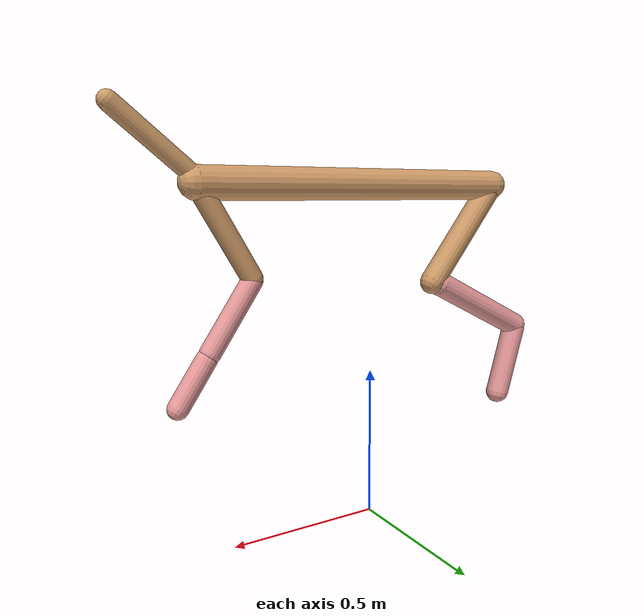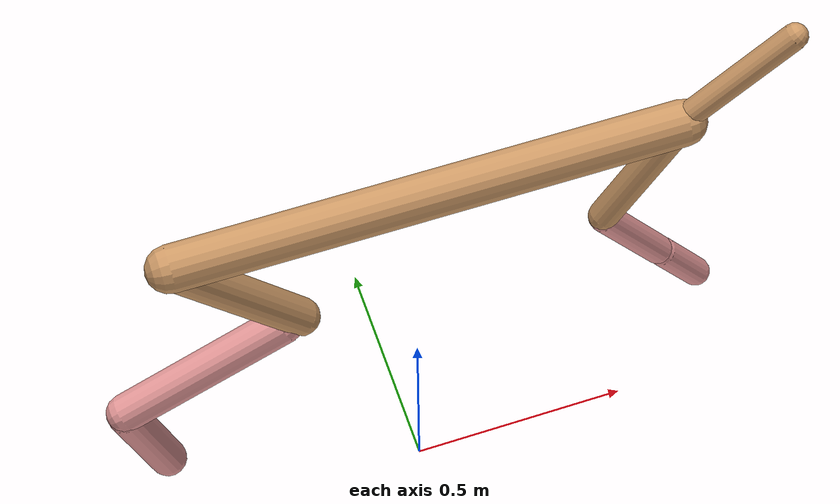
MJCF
<mujoco model="cheetah">
  <compiler angle="radian" coordinate="local" inertiafromgeom="true" settotalmass="14" />
  <default>
    <joint armature=".1" damping=".01" limited="true" solimplimit="0 .8 .03" solreflimit=".02 1" stiffness="8" />
    <geom conaffinity="0" condim="3" contype="1" friction="0.8 .1 .1" rgba="0.8 0.6 .4 1" solimp="0.0 0.8 0.01" solref="0.02 1" />
    <motor ctrllimited="true" ctrlrange="-1 1" />
  </default>
  <size nstack="300000" nuser_geom="1" />
  <option gravity="0 0 -9.81" timestep="0.01" />
  <worldbody>
    <body name="torso" pos="0.0 0.0 1.1024002402807178">
      <joint armature="0" axis="1 0 0" damping="0" limited="false" name="ignorex" pos="0 0 0" stiffness="0" type="slide" />
      <joint armature="0" axis="0 0 1" damping="0" limited="false" name="ignorez" pos="0 0 0" stiffness="0" type="slide" />
      <joint armature="0" axis="0 1 0" damping="0" limited="false" name="ignorey" pos="0 0 0" stiffness="0" type="hinge" />
      <geom fromto="-0.5 0.0 0.0 0.5676986416207447 0.0 0.0" name="torso" size="0.048550489786992466" type="capsule" />
      <geom axisangle="0 1 0 .87" name="head" pos="0.6676986416207445 0.0 0.1" size="0.027370455421267013 0.15" type="capsule" />

      <body name="bthigh" pos="-.5 0 0">
        <joint axis="0 1 0" damping="6" name="bthigh" pos="0 0 0" range="-.52 1.05" stiffness="240" type="hinge" />
        <geom axisangle="0 1 0 -3.8" name="bthigh" pos="0.13014866501424582 0.0 -0.16919326451851957" size="0.041226684514983965 0.19444748715313906" type="capsule" />
        <body name="bshin" pos="0.22029733002849164 0.0 -0.32838652903703913">
          <joint axis="0 1 0" damping="4.5" name="bshin" pos="0 0 0" range="-.785 .785" stiffness="180" type="hinge" />
          <geom axisangle="0 1 0 -2.03" name="bshin" pos="-0.18575225210660684 0.0 -0.09287612605330342" rgba="0.9 0.6 0.6 1" size="0.041226684514983965 0.20115257291704042" type="capsule" />
          <body name="bfoot" pos="-0.3715045042132137 0.0 -0.18575225210660684">
            <joint axis="0 1 0" damping="3" name="bfoot" pos="0 0 0" range="-.4 .785" stiffness="120" type="hinge" />
            <geom axisangle="0 1 0 -.27" name="bfoot" pos="0.03947146290250391 0.0 -0.12762439671809597" rgba="0.9 0.6 0.6 1" size="0.041226684514983965 0.12605561236134533" type="capsule" />
            <inertial mass="10" />
          </body>
        </body>
      </body>
      <body name="fthigh" pos="0.5676986416207446 0.0 0.0">
        <joint axis="0 1 0" damping="4.5" name="fthigh" pos="0 0 0" range="-1.5 0.8" stiffness="180" type="hinge" />
        <geom axisangle="0 1 0 .52" name="fthigh" pos="-0.08007545568813362 0.0 -0.1372722097510862" size="0.0322 0.1529961005450828" type="capsule" />
        <body name="fshin" pos="-0.16015091137626725 0.0 -0.2745444195021724">
          <joint axis="0 1 0" damping="3" name="fshin" pos="0 0 0" range="-1.2 1.1" stiffness="120" type="hinge" />
          <geom axisangle="0 1 0 -.6" name="fshin" pos="0.07433081177581963 0.0 -0.10291958553575024" rgba="0.9 0.6 0.6 1" size="0.0322 0.12193674178781036" type="capsule" />
          <body name="ffoot" pos="0.14866162355163925 0.0 -0.2058391710715005">
            <joint axis="0 1 0" damping="1.5" name="ffoot" pos="0 0 0" range="-3.1 -0.3" stiffness="60" type="hinge" />
            <geom axisangle="0 1 0 -.6" name="ffoot" pos="0.05069107535074817 0.0 -0.07885278387894161" rgba="0.9 0.6 0.6 1" size="0.0322 0.08052426344478043" type="capsule" />
            <inertial mass="10" />
          </body>
        </body>
      </body>
    </body>
  </worldbody>
  <actuator>
    <motor gear="120" joint="bthigh" name="bthigh" />
    <motor gear="90" joint="bshin" name="bshin" />
    <motor gear="60" joint="bfoot" name="bfoot" />
    <motor gear="120" joint="fthigh" name="fthigh" />
    <motor gear="60" joint="fshin" name="fshin" />
    <motor gear="30" joint="ffoot" name="ffoot" />
  </actuator>
</mujoco>
